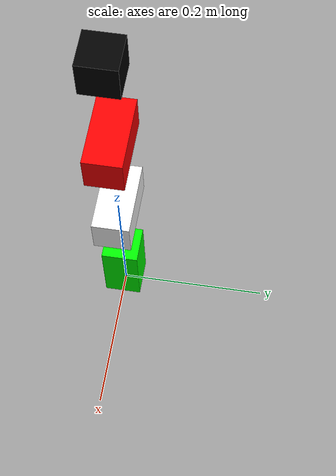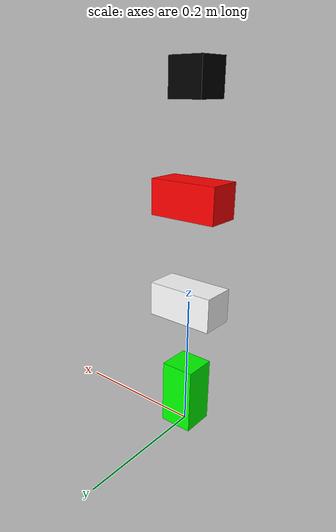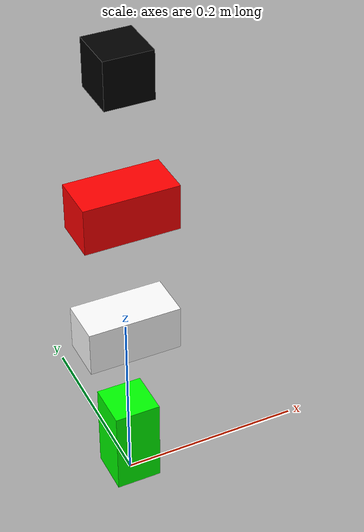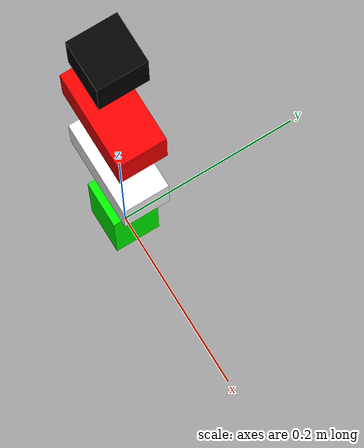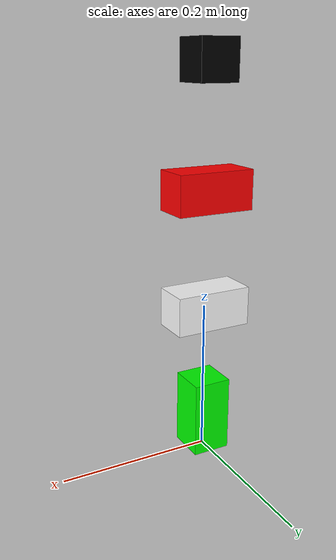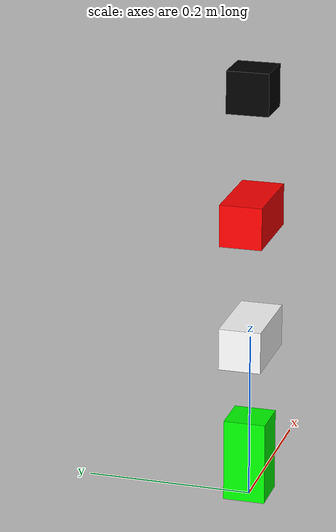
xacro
<?xml version="1.0" encoding="utf-8"?>

<robot name="robot_scara" xmlns:xacro="https://ros.org.wiki/xacro">

     <!-- Base -->
    <link name="base_link">
        <visual>
            <origin xyz="0.0 0.0 0.05" rpy="0.0 0.0 0.0"/>
            <geometry>
                <box size="0.05 0.05 0.10"/>
            </geometry>
            <material name="verde">
                <color rgba="0.0 1.0 0.0 1.0"/>
            </material>
        </visual>
        <collision>
            <origin xyz="0.0 0.0 0.05" rpy="0.0 0.0 0.0"/>
            <geometry>
                <box size="0.05 0.05 0.10"/>
            </geometry>
        </collision>
        <inertial>
            <mass value="1.0"/>
            <origin xyz="0.0 0.0 0.0" rpy="0.0 0.0 0.0"/>
            <inertia ixx="1.0" ixy="0.0" ixz="0.0" iyy="1.0" iyz="0.0" izz="1.0"/>
        </inertial>
    </link>

     <!-- Primer Eslabón -->
    <link name="link_1">
        <visual>
            <origin xyz="0.0 0.0 0.075" rpy="0.0 0.0 0.0"/>
            <geometry>
                <box size="0.10 0.05 0.05"/>
            </geometry>
            <material name="blanco">
                <color rgba="1.0 1.0 1.0 1.0"/>
            </material>
        </visual>
        <collision>
            <origin xyz="0.0 0.0 0.075" rpy="0.0 0.0 0.0"/>
            <geometry>
                <box size="0.10 0.05 0.05"/>
            </geometry>
        </collision>
        <inertial>
            <mass value="1.0"/>
            <origin xyz="0.0 0.0 0.0" rpy="0.0 0.0 0.0"/>
            <inertia ixx="1.0" ixy="0.0" ixz="0.0" iyy="1.0" iyz="0.0" izz="1.0"/>
        </inertial>
    </link>

     <!-- Segundo Eslabón -->
    <link name="link_2">
        <visual>
            <origin xyz="0.0 0.0 0.075" rpy="0.0 0.0 0.0"/>
            <geometry>
                <box size="0.10 0.05 0.05"/>
            </geometry>
            <material name="rojo">
                <color rgba="1.0 0.0 0.0 1.0"/>
            </material>
        </visual>
        <collision>
            <origin xyz="0.0 0.0 0.075" rpy="0.0 0.0 0.0"/>
            <geometry>
                <box size="0.10 0.05 0.05"/>
            </geometry>
        </collision>
        <inertial>
            <mass value="1.0"/>
            <origin xyz="0.0 0.0 0.0" rpy="0.0 0.0 0.0"/>
            <inertia ixx="1.0" ixy="0.0" ixz="0.0" iyy="1.0" iyz="0.0" izz="1.0"/>
        </inertial>
    </link>

     <!-- Tercer Eslabón -->
    <link name="link_3">
        <visual>
            <origin xyz="0.0 0.0 0.075" rpy="0.0 0.0 0.0"/>
            <geometry>
                <box size="0.05 0.05 0.05"/>
            </geometry>
            <material name="negro">
                <color rgba="0.0 0.0 0.0 1.0"/>
            </material>
        </visual>
        <collision>
            <origin xyz="0.0 0.0 0.075" rpy="0.0 0.0 0.0"/>
            <geometry>
                <box size="0.05 0.05 0.05"/>
            </geometry>
        </collision>
        <inertial>
            <mass value="1.0"/>
            <origin xyz="0.0 0.0 0.0" rpy="0.0 0.0 0.0"/>
            <inertia ixx="1.0" ixy="0.0" ixz="0.0" iyy="1.0" iyz="0.0" izz="1.0"/>
        </inertial>
    </link>

     <!-- Primera Junta Rotacional -->
    <joint name="link_1_joint" type="revolute" >
        <parent link="base_link" />
        <child link="link_1" />
        <axis xyz="0 0 1" />
        <limit lower="-1.57" upper="1.57" velocity="50" effort="10" />
        <origin xyz="0.0 0.0 0.125" rpy="0.0 0.0 0.0" />
    </joint>

     <!-- Segunda Junta Rotacional -->
    <joint name="link_2_joint" type="revolute" >
        <parent link="link_1" />
        <child link="link_2" />
        <axis xyz="0 1 0" />
        <limit lower="-1.57" upper="1.57" velocity="50" effort="10" />
        <origin xyz="0.0 0.0 0.15" rpy="0.0 0.0 0.0" />
    </joint>

     <!-- Tercera Junta Rotacional -->
    <joint name="link_3_joint" type="revolute" >
        <parent link="link_2" />
        <child link="link_3" />
        <axis xyz="0 1 0" />
        <limit lower="-1.57" upper="1.57" velocity="50" effort="10" />
        <origin xyz="0.0 0.0 0.15" rpy="0.0 0.0 0.0" />
    </joint>

</robot>
